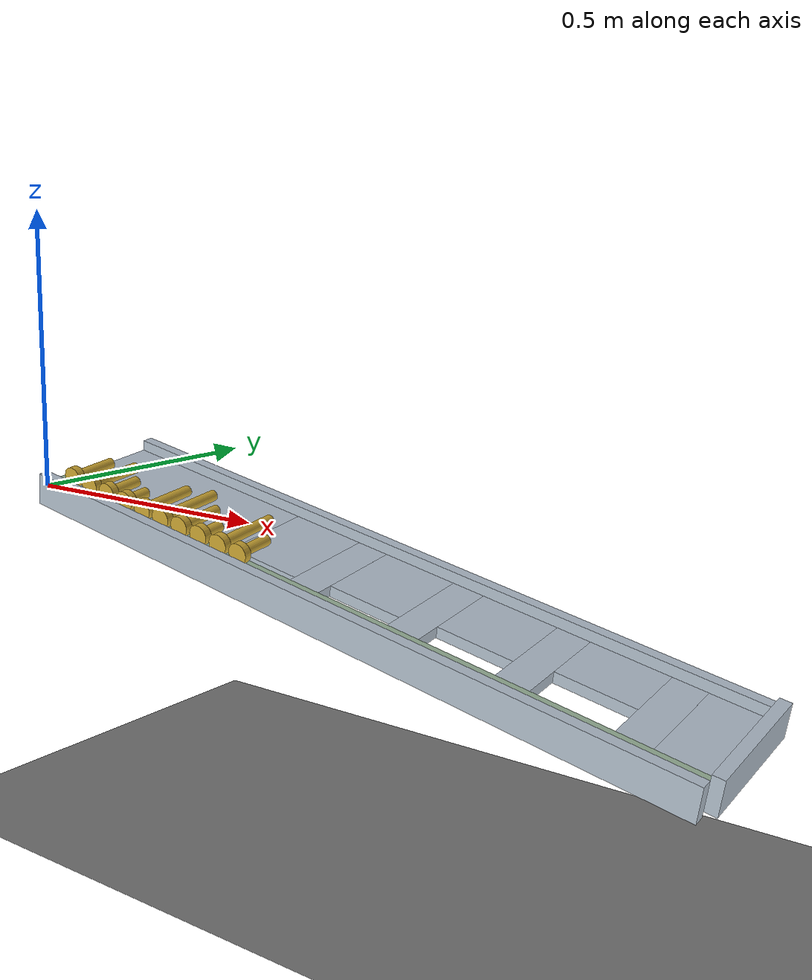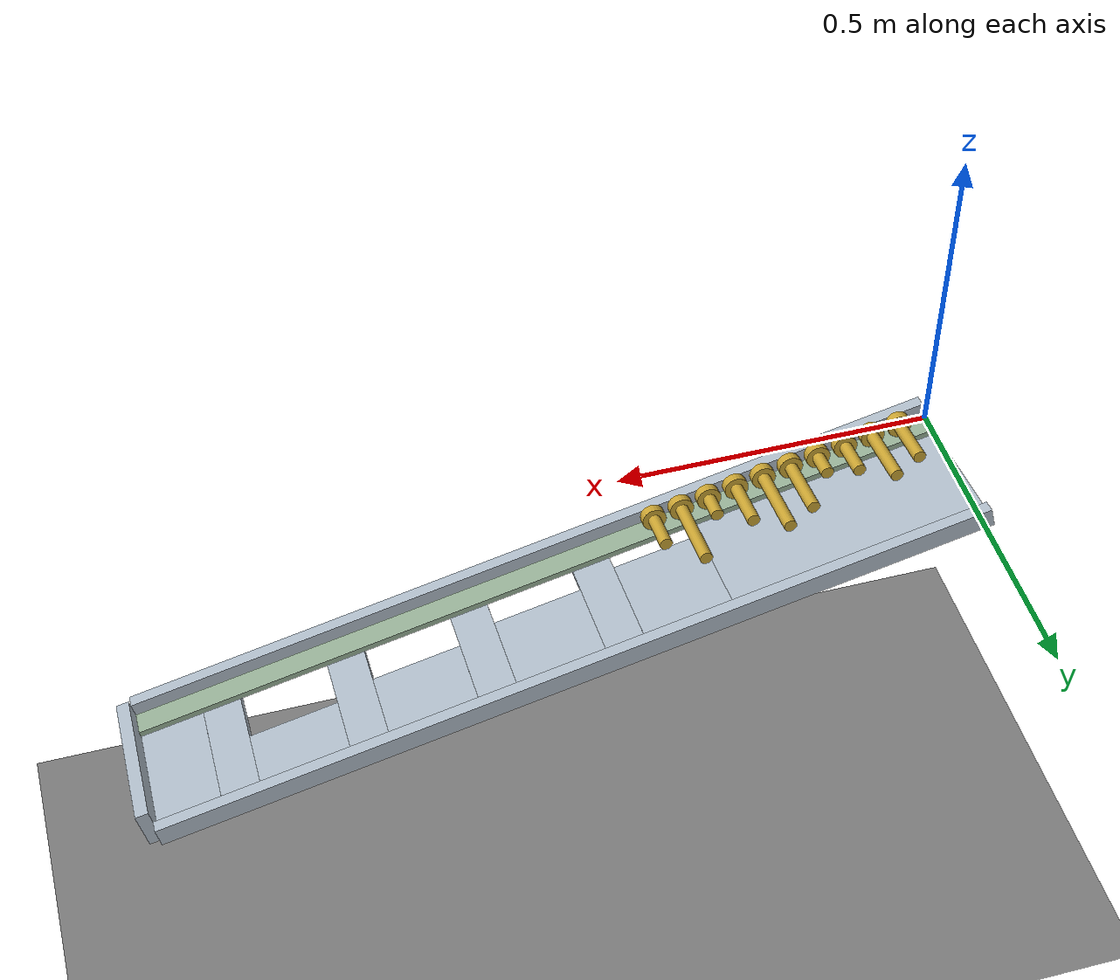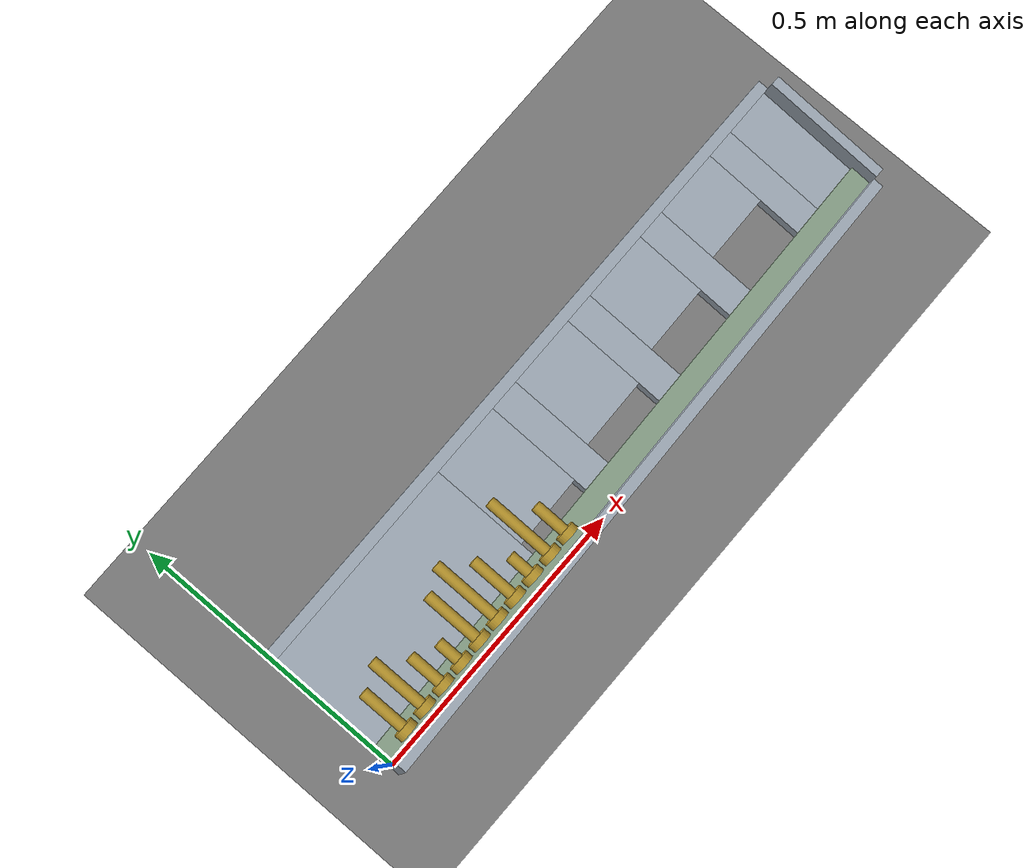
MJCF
<mujoco model="zav"><option timestep="0.0004" gravity="0 0 -9.81" integrator="implicitfast" cone="elliptic" impratio="10"><flag multiccd="enable"/></option>
<visual><global offwidth="1280" offheight="720"/></visual>
<worldbody><light pos="0.5 -1 2" dir="-0.3 0.5 -1"/><camera name="iso" pos="0.6358 0.8376 0.4829" xyaxes="-1.0000 -0.0000 0.0000 0.0000 -0.6805 0.7328"/>
<geom name="lead" type="box" pos="0.19355 0.12598 -0.03416" size="0.20000 0.12000 0.01000" xyaxes="0.978148 0.028936 -0.205888 0.000000 0.990268 0.139173" rgba="0.7 0.75 0.8 1" friction="0.3 0.005 0.0001"/>
<geom name="front0" type="box" pos="0.45765 0.16548 -0.08530" size="0.07000 0.08800 0.01000" xyaxes="0.978148 0.028936 -0.205888 0.000000 0.990268 0.139173" rgba="0.7 0.75 0.8 1" friction="0.3 0.005 0.0001"/>
<geom name="gap0" type="box" pos="0.55547 0.13669 -0.11034" size="0.03000 0.12000 0.01000" xyaxes="0.978148 0.028936 -0.205888 0.000000 0.990268 0.139173" rgba="0.7 0.75 0.8 1" friction="0.3 0.005 0.0001"/>
<geom name="front1" type="box" pos="0.65328 0.18117 -0.12509" size="0.07000 0.07800 0.01000" xyaxes="0.978148 0.028936 -0.205888 0.000000 0.990268 0.139173" rgba="0.7 0.75 0.8 1" friction="0.3 0.005 0.0001"/>
<geom name="gap1" type="box" pos="0.75109 0.14247 -0.15152" size="0.03000 0.12000 0.01000" xyaxes="0.978148 0.028936 -0.205888 0.000000 0.990268 0.139173" rgba="0.7 0.75 0.8 1" friction="0.3 0.005 0.0001"/>
<geom name="front2" type="box" pos="0.84891 0.19686 -0.16487" size="0.07000 0.06800 0.01000" xyaxes="0.978148 0.028936 -0.205888 0.000000 0.990268 0.139173" rgba="0.7 0.75 0.8 1" friction="0.3 0.005 0.0001"/>
<geom name="gap2" type="box" pos="0.94672 0.14826 -0.19270" size="0.03000 0.12000 0.01000" xyaxes="0.978148 0.028936 -0.205888 0.000000 0.990268 0.139173" rgba="0.7 0.75 0.8 1" friction="0.3 0.005 0.0001"/>
<geom name="front3" type="box" pos="1.04454 0.21255 -0.20466" size="0.07000 0.05800 0.01000" xyaxes="0.978148 0.028936 -0.205888 0.000000 0.990268 0.139173" rgba="0.7 0.75 0.8 1" friction="0.3 0.005 0.0001"/>
<geom name="gap3" type="box" pos="1.14235 0.15405 -0.23387" size="0.03000 0.12000 0.01000" xyaxes="0.978148 0.028936 -0.205888 0.000000 0.990268 0.139173" rgba="0.7 0.75 0.8 1" friction="0.3 0.005 0.0001"/>
<geom name="end" type="box" pos="1.22061 0.15636 -0.25035" size="0.05000 0.12000 0.01000" xyaxes="0.978148 0.028936 -0.205888 0.000000 0.990268 0.139173" rgba="0.7 0.75 0.8 1" friction="0.3 0.005 0.0001"/>
<geom name="wall" type="box" pos="0.63580 0.00891 -0.13522" size="0.65000 0.01000 0.03000" xyaxes="0.978148 0.028936 -0.205888 0.000000 0.990268 0.139173" rgba="0.7 0.75 0.8 1" friction="0.3 0.005 0.0001"/>
<geom name="ledge" type="box" pos="0.63673 0.03800 -0.12669" size="0.65000 0.02000 0.00450" xyaxes="0.978148 0.028936 -0.205888 0.000000 0.990268 0.139173" rgba="0.6 0.7 0.6 1" friction="0.3 0.005 0.0001"/>
<geom name="endwall" type="box" pos="1.28345 0.15538 -0.24333" size="0.01000 0.12000 0.03000" xyaxes="0.978148 0.028936 -0.205888 0.000000 0.990268 0.139173" rgba="0.7 0.75 0.8 1" friction="0.3 0.005 0.0001"/>
<geom name="frontlip" type="box" pos="0.63684 0.26569 -0.09419" size="0.65000 0.01000 0.01500" xyaxes="0.978148 0.028936 -0.205888 0.000000 0.990268 0.139173" rgba="0.7 0.75 0.8 1" friction="0.3 0.005 0.0001"/>
<geom name="ground" type="plane" pos="0 0 -0.6" size="3 3 0.1"/>
<body name="s0" pos="0.05483 0.10452 0.03234" quat="0.652465 0.750575 0.078889 -0.068577"><freejoint/>
<geom name="s0_sh" type="cylinder" size="0.01000 0.04000" pos="0 0 0.04000" density="7850" rgba="0.8 0.65 0.2 1" friction="0.3 0.005 0.0001"/>
<geom name="s0_hd" type="cylinder" size="0.01900 0.00700" pos="0 0 0.08700" density="7850" rgba="0.8 0.65 0.2 1" friction="0.3 0.005 0.0001"/>
</body>
<body name="s1" pos="0.09885 0.12562 0.02586" quat="0.652465 0.750575 0.078889 -0.068577"><freejoint/>
<geom name="s1_sh" type="cylinder" size="0.01000 0.05000" pos="0 0 0.05000" density="7850" rgba="0.8 0.65 0.2 1" friction="0.3 0.005 0.0001"/>
<geom name="s1_hd" type="cylinder" size="0.01900 0.00700" pos="0 0 0.10700" density="7850" rgba="0.8 0.65 0.2 1" friction="0.3 0.005 0.0001"/>
</body>
<body name="s2" pos="0.14287 0.08731 0.01103" quat="0.652465 0.750575 0.078889 -0.068577"><freejoint/>
<geom name="s2_sh" type="cylinder" size="0.01000 0.03000" pos="0 0 0.03000" density="7850" rgba="0.8 0.65 0.2 1" friction="0.3 0.005 0.0001"/>
<geom name="s2_hd" type="cylinder" size="0.01900 0.00700" pos="0 0 0.06700" density="7850" rgba="0.8 0.65 0.2 1" friction="0.3 0.005 0.0001"/>
</body>
<body name="s3" pos="0.18688 0.06881 -0.00102" quat="0.652465 0.750575 0.078889 -0.068577"><freejoint/>
<geom name="s3_sh" type="cylinder" size="0.01000 0.02000" pos="0 0 0.02000" density="7850" rgba="0.8 0.65 0.2 1" friction="0.3 0.005 0.0001"/>
<geom name="s3_hd" type="cylinder" size="0.01900 0.00700" pos="0 0 0.04700" density="7850" rgba="0.8 0.65 0.2 1" friction="0.3 0.005 0.0001"/>
</body>
<body name="s4" pos="0.23090 0.12953 -0.00193" quat="0.652465 0.750575 0.078889 -0.068577"><freejoint/>
<geom name="s4_sh" type="cylinder" size="0.01000 0.05000" pos="0 0 0.05000" density="7850" rgba="0.8 0.65 0.2 1" friction="0.3 0.005 0.0001"/>
<geom name="s4_hd" type="cylinder" size="0.01900 0.00700" pos="0 0 0.10700" density="7850" rgba="0.8 0.65 0.2 1" friction="0.3 0.005 0.0001"/>
</body>
<body name="s5" pos="0.27492 0.15064 -0.00842" quat="0.652465 0.750575 0.078889 -0.068577"><freejoint/>
<geom name="s5_sh" type="cylinder" size="0.01000 0.06000" pos="0 0 0.06000" density="7850" rgba="0.8 0.65 0.2 1" friction="0.3 0.005 0.0001"/>
<geom name="s5_hd" type="cylinder" size="0.01900 0.00700" pos="0 0 0.12700" density="7850" rgba="0.8 0.65 0.2 1" friction="0.3 0.005 0.0001"/>
</body>
<body name="s6" pos="0.31893 0.11233 -0.02325" quat="0.652465 0.750575 0.078889 -0.068577"><freejoint/>
<geom name="s6_sh" type="cylinder" size="0.01000 0.04000" pos="0 0 0.04000" density="7850" rgba="0.8 0.65 0.2 1" friction="0.3 0.005 0.0001"/>
<geom name="s6_hd" type="cylinder" size="0.01900 0.00700" pos="0 0 0.08700" density="7850" rgba="0.8 0.65 0.2 1" friction="0.3 0.005 0.0001"/>
</body>
<body name="s7" pos="0.36295 0.07402 -0.03808" quat="0.652465 0.750575 0.078889 -0.068577"><freejoint/>
<geom name="s7_sh" type="cylinder" size="0.01000 0.02000" pos="0 0 0.02000" density="7850" rgba="0.8 0.65 0.2 1" friction="0.3 0.005 0.0001"/>
<geom name="s7_hd" type="cylinder" size="0.01900 0.00700" pos="0 0 0.04700" density="7850" rgba="0.8 0.65 0.2 1" friction="0.3 0.005 0.0001"/>
</body>
<body name="s8" pos="0.40697 0.15454 -0.03621" quat="0.652465 0.750575 0.078889 -0.068577"><freejoint/>
<geom name="s8_sh" type="cylinder" size="0.01000 0.06000" pos="0 0 0.06000" density="7850" rgba="0.8 0.65 0.2 1" friction="0.3 0.005 0.0001"/>
<geom name="s8_hd" type="cylinder" size="0.01900 0.00700" pos="0 0 0.12700" density="7850" rgba="0.8 0.65 0.2 1" friction="0.3 0.005 0.0001"/>
</body>
<body name="s9" pos="0.45098 0.09643 -0.05383" quat="0.652465 0.750575 0.078889 -0.068577"><freejoint/>
<geom name="s9_sh" type="cylinder" size="0.01000 0.03000" pos="0 0 0.03000" density="7850" rgba="0.8 0.65 0.2 1" friction="0.3 0.005 0.0001"/>
<geom name="s9_hd" type="cylinder" size="0.01900 0.00700" pos="0 0 0.06700" density="7850" rgba="0.8 0.65 0.2 1" friction="0.3 0.005 0.0001"/>
</body>
</worldbody></mujoco>
